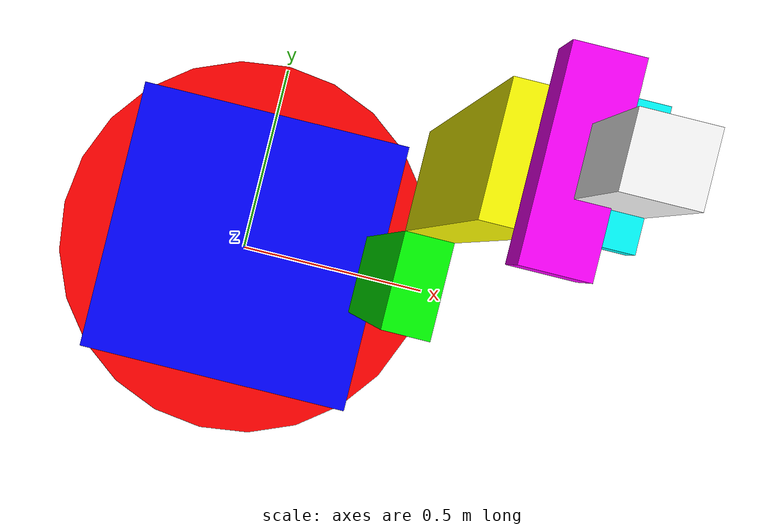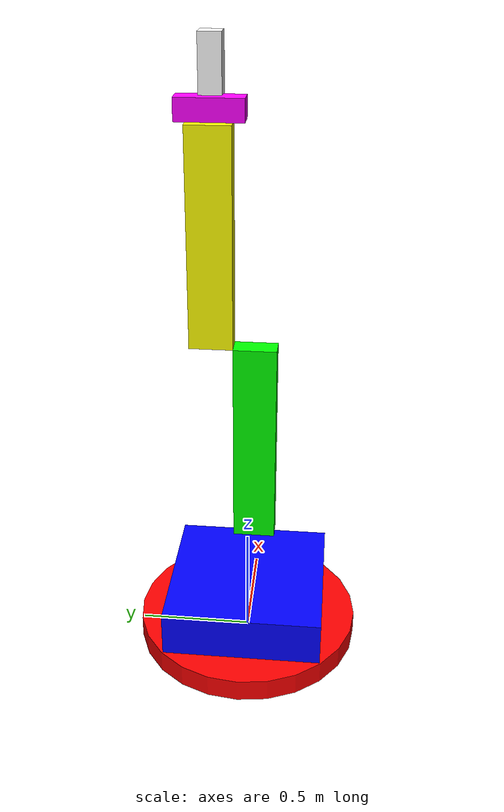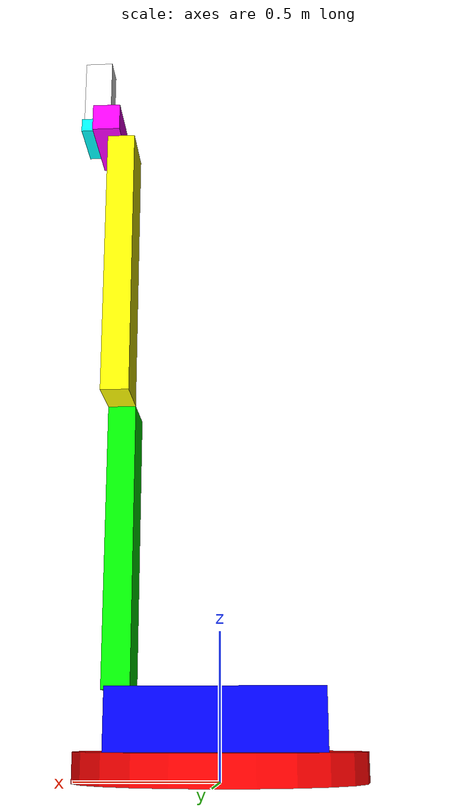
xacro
<?xml version="1.0"?>
<robot name="desktop_robot" xmlns:xacro="http://ros.org/wiki/xacro">

	<!-- create here macro params -->
	<xacro:property name="base_r" value="0.5" />	<!-- base radius -->
	<xacro:property name="base_z" value="0.1" />	<!-- base height -->

	<xacro:property name="fil_x" value="0.7" />	<!-- first link x -->
	<xacro:property name="fil_y" value="0.7" />	<!-- first link y -->
	<xacro:property name="fil_z" value="0.2" />	<!-- first link z -->

	<xacro:property name="sel_x" value="0.1" />	<!-- second link x -->
	<xacro:property name="sel_y" value="0.2" />	<!-- second link y -->
	<xacro:property name="sel_z" value="1" />	<!-- second link z -->

	<xacro:property name="thl_x" value="0.1" />	<!-- third link x -->
	<xacro:property name="thl_y" value="0.2" />	<!-- third link y -->
	<xacro:property name="thl_z" value="1" />	<!-- third link z -->

	<xacro:property name="fol_x" value="0.1" />	<!-- fourth link x -->
	<xacro:property name="fol_y" value="0.3" />	<!-- fourth link y -->
	<xacro:property name="fol_z" value="0.1" />	<!-- fourth link z -->

	<xacro:property name="ffl_x" value="0.1" />	<!-- fifth link x -->
	<xacro:property name="ffl_y" value="0.2" />	<!-- fifth link y -->
	<xacro:property name="ffl_z" value="0.05" />	<!-- fifth link z -->

	<xacro:property name="sil_x" value="0.1" />	<!-- sixth link x -->
	<xacro:property name="sil_y" value="0.1" />	<!-- sixth link y -->
	<xacro:property name="sil_z" value="0.3" />	<!-- sixth link z -->

	<!-- create here materials/colours -->
	<material name="blue">
	    <color rgba="0 0 1 1"/>
	 </material>
	 <material name="red">
	    <color rgba="1 0 0 1"/>
	 </material>
	 <material name="green">
	    <color rgba="0 1 0 1"/>
	 </material>
	 <material name="white">
	    <color rgba="1 1 1 1"/>
	 </material>
	 <material name="yellow">
	    <color rgba="1 1 0 1"/>
	 </material>
	 <material name="magenta">
	    <color rgba="1 0 1 1"/>
	 </material>
	 <material name="cyan">
	    <color rgba="0 1 1 1"/>
	 </material>
	<!-- create here links -->
	 <link name="base_link">
	    <!-- used for visual appearance -->
	    <visual>
	      <geometry>
		<!-- list with all the different options -->
		<cylinder length="${base_z}" radius="${base_r}"/>
	      </geometry>
	      <material name="red"/>
	      <origin rpy="0 0 0" xyz="0 0 ${0.5*base_z}"/>
	    </visual>
	  </link>

	 <link name="first_link">
	    <!-- used for visual appearance -->
	    <visual>
	      <geometry>
		<!-- list with all the different options -->
		<box size="${fil_x} ${fil_y} ${fil_z}"/>
	      </geometry>
	      <material name="blue"/>
	      <origin rpy="0 0 0" xyz="0 0 ${fil_z/2}"/>
	    </visual>
	  </link>

	 <link name="second_link">
	    <!-- used for visual appearance -->
	    <visual>
	      <geometry>
		<!-- list with all the different options -->
		<box size="${sel_x} ${sel_y} ${sel_z}"/>
	      </geometry>
	      <material name="green"/>
	      <origin rpy="0 0 0" xyz="0 0 ${sel_z/2}"/>
	    </visual>
	 </link>

  	 <link name="third_link">
	    <!-- used for visual appearance -->
	    <visual>
	      <geometry>
		<!-- list with all the different options -->
		<box size="${thl_x} ${thl_y} ${thl_z}"/>
	      </geometry>
	      <material name="yellow"/>
	      <origin rpy="0 0 0" xyz="0 0 ${thl_z/2}"/>
    </visual>
  </link>
  <link name="fourth_link">
	    <!-- used for visual appearance -->
	    <visual>
	      <geometry>
		<!-- list with all the different options -->
		<box size="${fol_x} ${fol_y} ${fol_z}"/>
	      </geometry>
	      <material name="magenta"/>
	      <origin rpy="0 0 0" xyz="0 0 ${fol_z/2}"/>
    </visual>
  </link>
  <link name="fifth_link">
	    <!-- used for visual appearance -->
	    <visual>
	      <geometry>
		<!-- list with all the different options -->
		<box size="${ffl_x} ${ffl_y} ${ffl_z}"/>
	      </geometry>
	      <material name="cyan"/>
	      <origin rpy="0 0 0" xyz="0 0 0"/>
    </visual>
  </link>
  <link name="sixth_link">
	    <!-- used for visual appearance -->
	    <visual>
	      <geometry>
		<!-- list with all the different options -->
		<box size="${sil_x} ${sil_y} ${sil_z}"/>
	      </geometry>
	      <material name="white"/>
	      <origin rpy="0 0 0" xyz="0 0 0"/>
    </visual>
  </link>

	<!-- create here continuous joints -->
	  <joint name="base-fil_j" type="continuous">	<!-- create joint between base and first link-->
	    <axis rpy="0 0 0" xyz="0 0 1"/>
	    <parent link="base_link"/>
	    <child link="first_link"/>
	    <origin rpy="0 0 0" xyz="0 0 ${base_z}"/>
	  </joint>

	  <joint name="fil-sel_j" type="continuous">	<!-- create joint between first and second link-->
	    <axis rpy="0 0 0" xyz="0 1 0"/>
	    <parent link="first_link"/>
	    <child link="second_link"/>
	    <origin rpy="0 0 0" xyz="${fil_x/2} 0 ${fil_z}"/>
	  </joint>

	  <joint name="sel-thl_j" type="continuous">	<!-- create joint between second and third link-->
	    <axis rpy="0 0 0" xyz="0 1 0"/>
	    <parent link="second_link"/>
	    <child link="third_link"/>
	    <origin rpy="0 0 0" xyz="0 ${sel_y} ${sel_z}"/>
	  </joint>

	  <joint name="thl-fol_j" type="continuous">	<!-- create joint between third and fourth link-->
	    <axis rpy="0 0 0" xyz="0 0 1"/>
	    <parent link="third_link"/>
	    <child link="fourth_link"/>
	    <origin rpy="0 0 0" xyz="${thl_x/2} 0 ${thl_z}"/>
	  </joint>

	  <joint name="fol-ffl_j" type="continuous">	<!-- create joint between fourth and fifth link-->
		    <axis rpy="0 0 0" xyz="0 1 0"/>
		    <parent link="fourth_link"/>
		    <child link="fifth_link"/>
		    <origin rpy="0 0 0" xyz="${fol_x/2} 0 ${fol_z/2}"/>
	  </joint>
	  <joint name="ffl-sil_j" type="continuous">	<!-- create joint between fifth and sixth link-->
		    <axis rpy="0 0 0" xyz="0 0 1"/>
		    <parent link="fifth_link"/>
		    <child link="sixth_link"/>
		    <origin rpy="0 0 0" xyz="0 0 ${sil_z/2}"/>
	  </joint>
	<!-- create here revolute joints -->

	<!-- create here prismatic joints -->
</robot>
